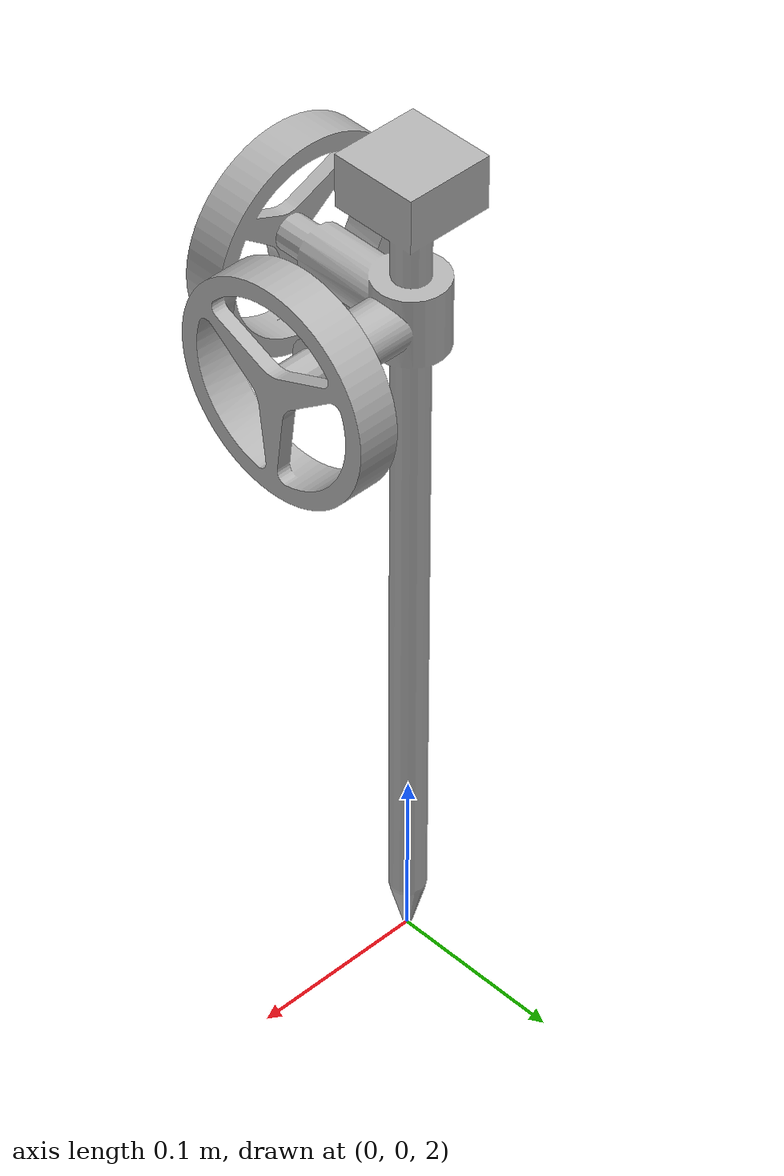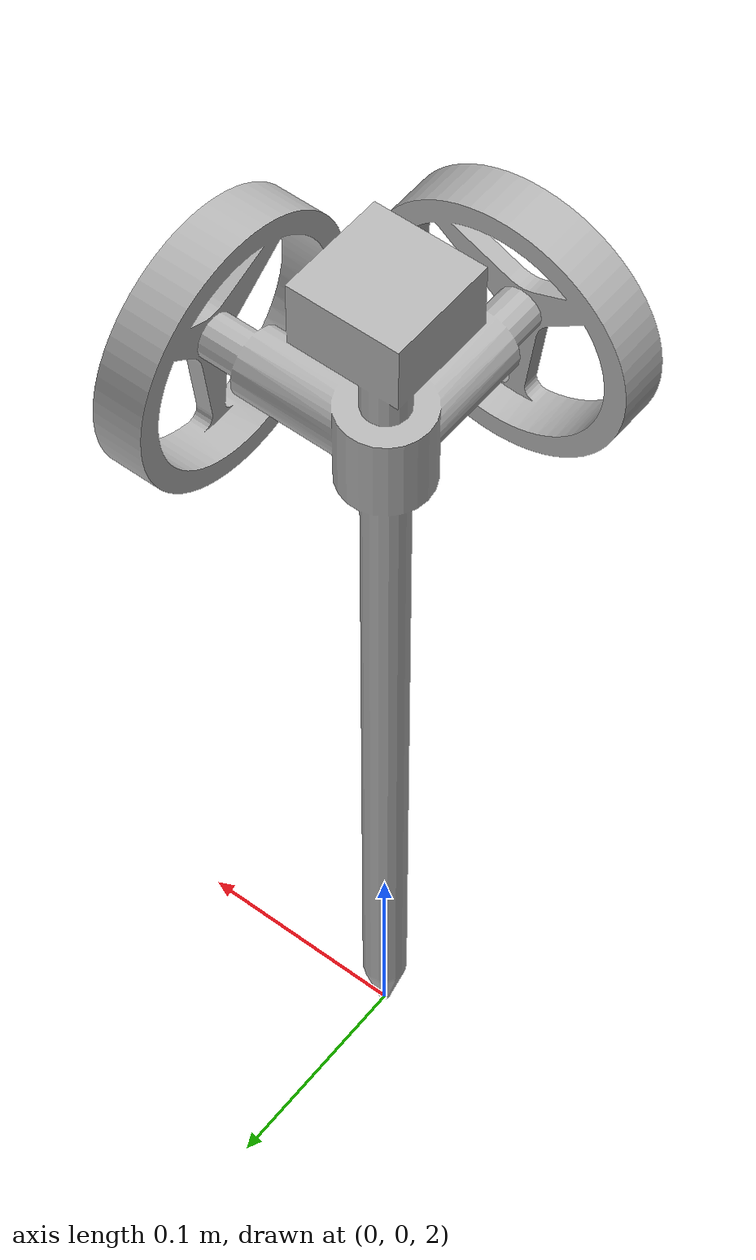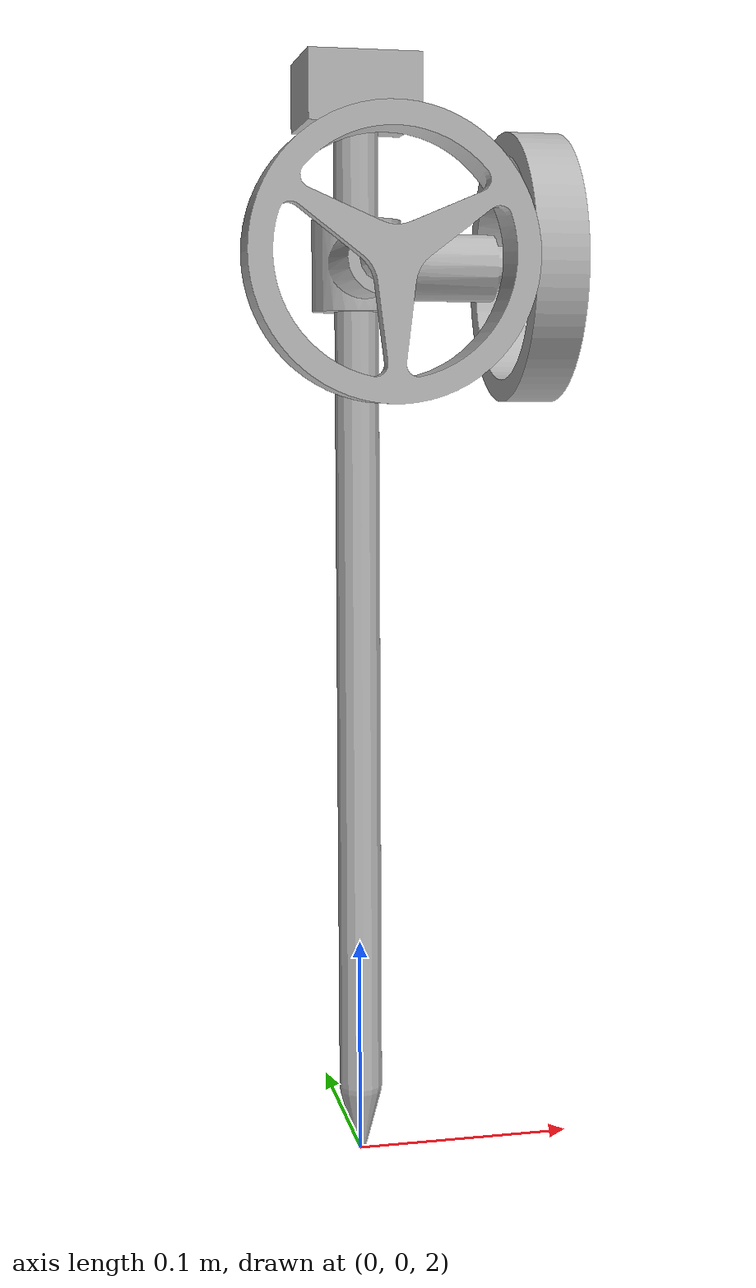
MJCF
<mujoco model="momentum_pendulum">
  <option timestep="0.005"/>
    <size njmax="50" nconmax="10" nstack="200"/>
    <visual>
      <rgba haze=".3 .3 .3 1"/>
      <global offwidth="2560" offheight="1440" elevation="-20" azimuth="120"/>
    </visual>
  <asset>
    <mesh name="base_link" file="base_link.stl" scale="0.001 0.001 0.001"/>
    <mesh name="axis_1_1" file="axis_1_1.stl" scale="0.001 0.001 0.001"/>
    <mesh name="axis_2_1" file="axis_2_1.stl" scale="0.001 0.001 0.001"/>
    <texture type="skybox" builtin="gradient" rgb1="0.6 0.6 0.6" rgb2="0 0 0" width="512" height="512"/>
    <texture name="texplane" type="2d" builtin="checker" rgb1=".25 .25 .25" rgb2=".3 .3 .3" width="512" height="512" mark="cross" markrgb=".8 .8 .8"/>
    <material name="matplane" reflectance="0.3" texture="texplane" texrepeat="1 1" texuniform="true"/>
  </asset>
  <worldbody>
    <geom name="floor" pos="0 0 0" size="0 0 1" type="plane" material="matplane"/>
    <light directional="true" diffuse=".8 .8 .8" specular=".2 .2 .2" pos="0 0 5" dir="0 0 -1"/>
    <body name="rod" pos="0 0 2" euler="90 0 0">
      <geom type="mesh" rgba="0.7 0.7 0.7 1" mesh="base_link"/>
      <joint name="rod_body_joint_X" type="hinge" axis="1 0 0"/>
      <joint name="rod_body_joint_y" type="hinge" axis="0 1 0"/>
        <body name="axis_1_1" pos="0 0.41 0.082" gravcomp="0">
          <inertial pos="0 0 -0.00236136" quat="0.5 0.5 -0.5 0.5" mass="0.253015" diaginertia="0.000683 0.000353 0.000353"/>
          <joint name="axis_1" pos="0 0 0" axis="0 0 1"/>
          <geom pos="0 -0.41 -0.082" type="mesh" rgba="0.7 0.7 0.7 1" mesh="axis_1_1"/>
        </body>
        <body name="axis_2_1" pos="0.082 0.41 0" gravcomp="0">
          <inertial pos="-0.00236136 0 0" mass="0.253015" diaginertia="0.000683 0.000353 0.000353"/>
          <joint name="axis_2" pos="0 0 0" axis="1 0 0"/>
          <geom pos="-0.082 -0.41 0" type="mesh" rgba="0.7 0.7 0.7 1" mesh="axis_2_1"/>
        </body>
    </body>
  </worldbody>
  <actuator>
    <motor gear="1" joint="axis_1"/>
    <motor gear="1" joint="axis_2"/>
  </actuator>
</mujoco>
